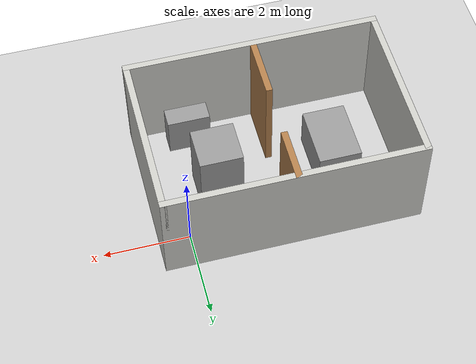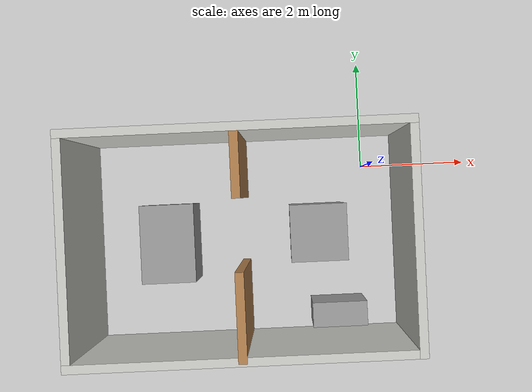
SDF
<sdf version="1.6">
 <world name="default">
  <light name="sun" type="directional">
   <pose>0 0 10 0 -0 0</pose>
   <diffuse>0.8 0.8 0.8 1</diffuse>
   <specular>0.1 0.1 0.1 1</specular>
   <attenuation>
    <range>1000</range>
    <constant>0.9</constant>
    <linear>0.01</linear>
    <quadratic>0.001</quadratic>
   </attenuation>
   <direction>-0.5 0.5 -1</direction>
  </light>
  <model name="ground_plane">
   <static>1</static>
   <link name="link">
    <collision name="collision">
     <geometry><plane><normal>0 0 1</normal><size>100 100</size></plane></geometry>
     <surface><friction><ode><mu>100</mu><mu2>50</mu2></ode></friction></surface>
    </collision>
    <visual name="visual">
     <cast_shadows>0</cast_shadows>
     <geometry><plane><normal>0 0 1</normal><size>100 100</size></plane></geometry>
     <material>
      <script><uri>file://media/materials/scripts/gazebo.material</uri><name>Gazebo/Grey</name></script>
     </material>
    </visual>
   </link>
  </model>
  <gravity>0 0 -9.8</gravity>
  <magnetic_field>6e-06 2.3e-05 -4.2e-05</magnetic_field>
  <atmosphere type="adiabatic"/>
  <physics name="default_physics" default="0" type="ode">
   <max_step_size>0.001</max_step_size>
   <real_time_factor>1</real_time_factor>
   <real_time_update_rate>1000</real_time_update_rate>
  </physics>
  <scene><ambient>0.4 0.4 0.4 1</ambient><background>0.7 0.7 0.7 1</background><shadows>1</shadows></scene>
  <spherical_coordinates>
   <surface_model>EARTH_WGS84</surface_model>
   <latitude_deg>0</latitude_deg>
   <longitude_deg>0</longitude_deg>
   <elevation>0</elevation>
   <heading_deg>0</heading_deg>
  </spherical_coordinates>
  <model name="clean_room">
   <pose>-2.27449 -1.25584 0 0 -0 0</pose>
   <link name="Wall_0">
    <collision name="Wall_0_Collision">
     <geometry><box><size>6 0.15 2.5</size></box></geometry>
     <pose>0 0 1.25 0 -0 0</pose>
    </collision>
    <visual name="Wall_0_Visual">
     <pose>0 0 1.25 0 -0 0</pose>
     <geometry><box><size>6 0.15 2.5</size></box></geometry>
     <material>
      <script><uri>file://media/materials/scripts/gazebo.material</uri><name>Gazebo/CeilingTiled</name></script>
      <ambient>1 1 1 1</ambient>
     </material>
    </visual>
    <pose>0 1.925 0 0 -0 0</pose>
   </link>
   <link name="Wall_1">
    <collision name="Wall_1_Collision">
     <geometry><box><size>4 0.15 2.5</size></box></geometry>
     <pose>0 0 1.25 0 -0 0</pose>
    </collision>
    <visual name="Wall_1_Visual">
     <pose>0 0 1.25 0 -0 0</pose>
     <geometry><box><size>4 0.15 2.5</size></box></geometry>
     <material>
      <script><uri>file://media/materials/scripts/gazebo.material</uri><name>Gazebo/CeilingTiled</name></script>
      <ambient>1 1 1 1</ambient>
     </material>
    </visual>
    <pose>2.925 0 0 0 0 -1.5708</pose>
   </link>
   <link name="Wall_12">
    <collision name="Wall_12_Collision">
     <geometry><box><size>1.25 0.15 2.5</size></box></geometry>
     <pose>0 0 1.25 0 -0 0</pose>
    </collision>
    <visual name="Wall_12_Visual">
     <pose>0 0 1.25 0 -0 0</pose>
     <geometry><box><size>1.25 0.15 2.5</size></box></geometry>
     <material>
      <script><uri>file://media/materials/scripts/gazebo.material</uri><name>Gazebo/Wood</name></script>
      <ambient>1 1 1 1</ambient>
     </material>
    </visual>
    <pose>-0.032459 1.37074 0 0 0 -1.5708</pose>
   </link>
   <link name="Wall_15">
    <collision name="Wall_15_Collision">
     <geometry><box><size>1.5 0.15 2.5</size></box></geometry>
     <pose>0 0 1.25 0 -0 0</pose>
    </collision>
    <visual name="Wall_15_Visual">
     <pose>0 0 1.25 0 -0 0</pose>
     <geometry><box><size>1.5 0.15 2.5</size></box></geometry>
     <material>
      <script><uri>file://media/materials/scripts/gazebo.material</uri><name>Gazebo/Wood</name></script>
      <ambient>1 1 1 1</ambient>
     </material>
    </visual>
    <pose>-0.033608 -1.2111 0 0 -0 1.5708</pose>
   </link>
   <link name="Wall_2">
    <collision name="Wall_2_Collision">
     <geometry><box><size>6 0.15 2.5</size></box></geometry>
     <pose>0 0 1.25 0 -0 0</pose>
    </collision>
    <visual name="Wall_2_Visual">
     <pose>0 0 1.25 0 -0 0</pose>
     <geometry><box><size>6 0.15 2.5</size></box></geometry>
     <material>
      <script><uri>file://media/materials/scripts/gazebo.material</uri><name>Gazebo/CeilingTiled</name></script>
      <ambient>1 1 1 1</ambient>
     </material>
    </visual>
    <pose>0 -1.925 0 0 -0 3.14159</pose>
   </link>
   <link name="Wall_3">
    <collision name="Wall_3_Collision">
     <geometry><box><size>4 0.15 2.5</size></box></geometry>
     <pose>0 0 1.25 0 -0 0</pose>
    </collision>
    <visual name="Wall_3_Visual">
     <pose>0 0 1.25 0 -0 0</pose>
     <geometry><box><size>4 0.15 2.5</size></box></geometry>
     <material>
      <script><uri>file://media/materials/scripts/gazebo.material</uri><name>Gazebo/CeilingTiled</name></script>
      <ambient>1 1 1 1</ambient>
     </material>
    </visual>
    <pose>-2.925 0 0 0 -0 1.5708</pose>
   </link>
   <static>1</static>
  </model>
  <model name="unit_box_0">
   <pose>-0.943902 -1.17416 0.827873 4e-06 -1e-06 3e-06</pose>
   <link name="link">
    <inertial>
     <mass>1</mass>
     <inertia>
      <ixx>0.166667</ixx>
      <ixy>0</ixy>
      <ixz>0</ixz>
      <iyy>0.166667</iyy>
      <iyz>0</iyz>
      <izz>0.166667</izz>
     </inertia>
    </inertial>
    <collision name="collision"><geometry><box><size>1 1 1.65575</size></box></geometry></collision>
    <visual name="visual">
     <geometry><box><size>1 1 1.65575</size></box></geometry>
     <material>
      <script><name>Gazebo/Grey</name><uri>file://media/materials/scripts/gazebo.material</uri></script>
     </material>
    </visual>
   </link>
  </model>
  <model name="unit_box_1">
   <pose>-0.589861 -2.72216 0.499997 0 -7e-06 0</pose>
   <link name="link">
    <inertial>
     <mass>1</mass>
     <inertia>
      <ixx>0.166667</ixx>
      <ixy>0</ixy>
      <ixz>0</ixz>
      <iyy>0.166667</iyy>
      <iyz>0</iyz>
      <izz>0.166667</izz>
     </inertia>
    </inertial>
    <collision name="collision"><geometry><box><size>1 0.451115 1</size></box></geometry></collision>
    <visual name="visual">
     <geometry><box><size>1 0.451115 1</size></box></geometry>
     <material>
      <script><name>Gazebo/Grey</name><uri>file://media/materials/scripts/gazebo.material</uri></script>
     </material>
    </visual>
   </link>
  </model>
  <model name="unit_box_2">
   <pose>-3.70594 -1.29835 0.5 0 -0 0</pose>
   <link name="link">
    <inertial>
     <mass>1</mass>
     <inertia>
      <ixx>0.166667</ixx>
      <ixy>0</ixy>
      <ixz>0</ixz>
      <iyy>0.166667</iyy>
      <iyz>0</iyz>
      <izz>0.166667</izz>
     </inertia>
    </inertial>
    <collision name="collision"><geometry><box><size>1 1.44085 1</size></box></geometry></collision>
    <visual name="visual">
     <geometry><box><size>1 1.44085 1</size></box></geometry>
     <material>
      <script><name>Gazebo/Grey</name><uri>file://media/materials/scripts/gazebo.material</uri></script>
     </material>
    </visual>
   </link>
  </model>
 </world>
</sdf>
